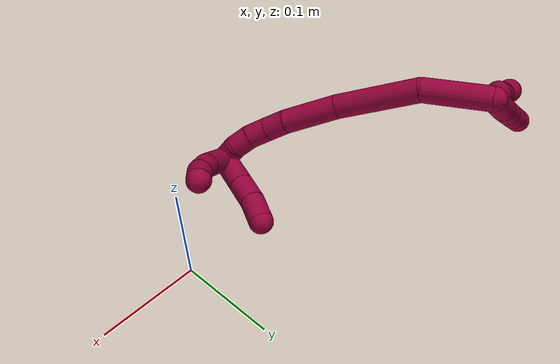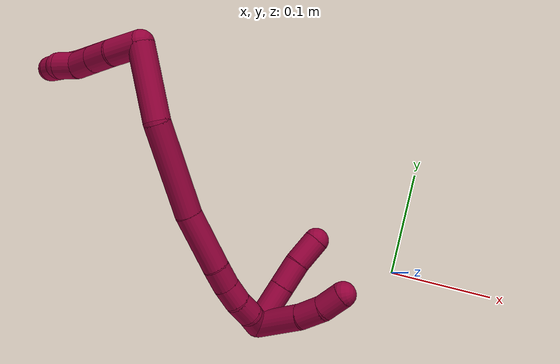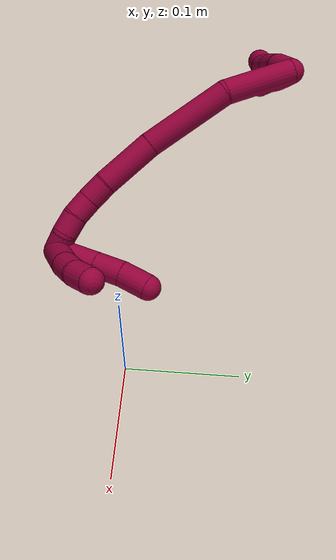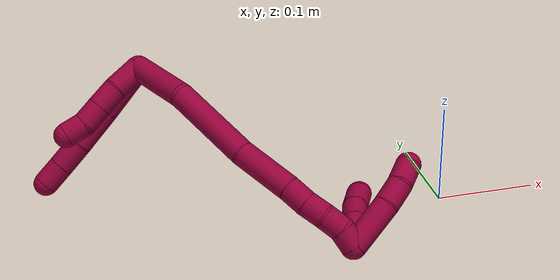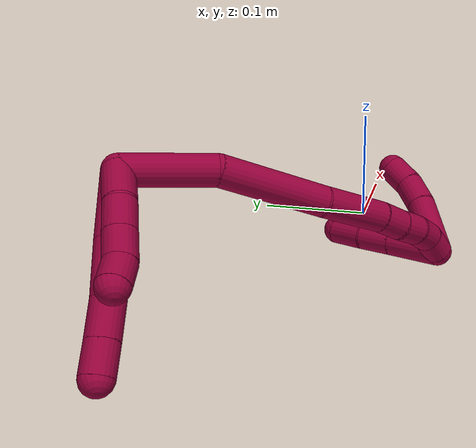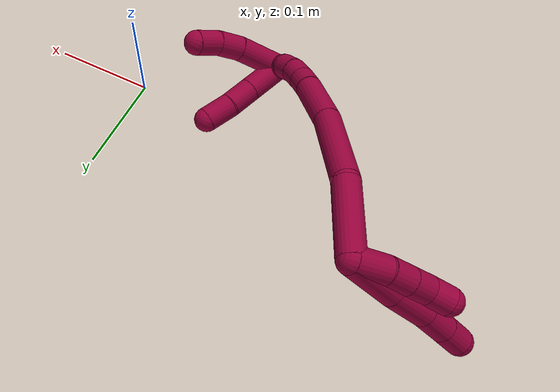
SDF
<sdf version="1.7">
 <world name="default">
  <model name="8">
   <static>0</static>
   <link name="8">
    <collision name="collision-cylinder-e_1_2_8">
     <pose>-0.009248 -9.6e-05 0.025584 0.003743 -0.346846 -0.000656</pose>
     <geometry><cylinder><radius>0.0125</radius><length>0.054408</length></cylinder></geometry>
     <surface>
      <friction><ode><mu>1.16</mu><mu2>1.16</mu2><slip1>0</slip1><slip2>0</slip2></ode></friction>
      <contact><ode><kp>1e+06</kp><kd>1</kd><max_vel>0</max_vel><min_depth>0.001</min_depth></ode></contact>
     </surface>
    </collision>
    <visual name="visual-cylinder-e_1_2_8">
     <pose>-0.009248 -9.6e-05 0.025584 0.003743 -0.346846 -0.000656</pose>
     <geometry><cylinder><radius>0.0125</radius><length>0.054408</length></cylinder></geometry>
     <material><ambient>0.584314 0 0.227451 1</ambient></material>
    </visual>
    <collision name="collision-cylinder-e_2_8_9">
     <pose>-0.024423 -0.000315 0.071557 0.006048 -0.282921 -0.000861</pose>
     <geometry><cylinder><radius>0.0125</radius><length>0.042467</length></cylinder></geometry>
     <surface>
      <friction><ode><mu>1.16</mu><mu2>1.16</mu2><slip1>0</slip1><slip2>0</slip2></ode></friction>
      <contact><ode><kp>1e+06</kp><kd>1</kd><max_vel>0</max_vel><min_depth>0.001</min_depth></ode></contact>
     </surface>
    </collision>
    <visual name="visual-cylinder-e_2_8_9">
     <pose>-0.024423 -0.000315 0.071557 0.006048 -0.282921 -0.000861</pose>
     <geometry><cylinder><radius>0.0125</radius><length>0.042467</length></cylinder></geometry>
     <material><ambient>0.584314 0 0.227451 1</ambient></material>
    </visual>
    <collision name="collision-cylinder-e_3_9_10">
     <pose>-0.035276 0.000275 0.105436 -0.052851 -0.349638 0.009337</pose>
     <geometry><cylinder><radius>0.0125</radius><length>0.028759</length></cylinder></geometry>
     <surface>
      <friction><ode><mu>1.16</mu><mu2>1.16</mu2><slip1>0</slip1><slip2>0</slip2></ode></friction>
      <contact><ode><kp>1e+06</kp><kd>1</kd><max_vel>0</max_vel><min_depth>0.001</min_depth></ode></contact>
     </surface>
    </collision>
    <visual name="visual-cylinder-e_3_9_10">
     <pose>-0.035276 0.000275 0.105436 -0.052851 -0.349638 0.009337</pose>
     <geometry><cylinder><radius>0.0125</radius><length>0.028759</length></cylinder></geometry>
     <material><ambient>0.584314 0 0.227451 1</ambient></material>
    </visual>
    <collision name="collision-cylinder-e_4_10_6">
     <pose>-0.044409 0.00176 0.130334 -0.067439 -0.352587 0.012018</pose>
     <geometry><cylinder><radius>0.0125</radius><length>0.024366</length></cylinder></geometry>
     <surface>
      <friction><ode><mu>1.16</mu><mu2>1.16</mu2><slip1>0</slip1><slip2>0</slip2></ode></friction>
      <contact><ode><kp>1e+06</kp><kd>1</kd><max_vel>0</max_vel><min_depth>0.001</min_depth></ode></contact>
     </surface>
    </collision>
    <visual name="visual-cylinder-e_4_10_6">
     <pose>-0.044409 0.00176 0.130334 -0.067439 -0.352587 0.012018</pose>
     <geometry><cylinder><radius>0.0125</radius><length>0.024366</length></cylinder></geometry>
     <material><ambient>0.584314 0 0.227451 1</ambient></material>
    </visual>
    <collision name="collision-cylinder-e_1_2_11">
     <pose>0.000225 0.000539 0.016017 -0.033668 0.014026 -0.000236</pose>
     <geometry><cylinder><radius>0.0125</radius><length>0.032056</length></cylinder></geometry>
     <surface>
      <friction><ode><mu>1.16</mu><mu2>1.16</mu2><slip1>0</slip1><slip2>0</slip2></ode></friction>
      <contact><ode><kp>1e+06</kp><kd>1</kd><max_vel>0</max_vel><min_depth>0.001</min_depth></ode></contact>
     </surface>
    </collision>
    <visual name="visual-cylinder-e_1_2_11">
     <pose>0.000225 0.000539 0.016017 -0.033668 0.014026 -0.000236</pose>
     <geometry><cylinder><radius>0.0125</radius><length>0.032056</length></cylinder></geometry>
     <material><ambient>0.584314 0 0.227451 1</ambient></material>
    </visual>
    <collision name="collision-cylinder-e_2_11_12">
     <pose>-0.001485 0.000967 0.044029 0.009357 -0.159893 -0.00075</pose>
     <geometry><cylinder><radius>0.0125</radius><length>0.0243</length></cylinder></geometry>
     <surface>
      <friction><ode><mu>1.16</mu><mu2>1.16</mu2><slip1>0</slip1><slip2>0</slip2></ode></friction>
      <contact><ode><kp>1e+06</kp><kd>1</kd><max_vel>0</max_vel><min_depth>0.001</min_depth></ode></contact>
     </surface>
    </collision>
    <visual name="visual-cylinder-e_2_11_12">
     <pose>-0.001485 0.000967 0.044029 0.009357 -0.159893 -0.00075</pose>
     <geometry><cylinder><radius>0.0125</radius><length>0.0243</length></cylinder></geometry>
     <material><ambient>0.584314 0 0.227451 1</ambient></material>
    </visual>
    <collision name="collision-cylinder-e_3_12_13">
     <pose>-0.005288 0.000657 0.067232 0.017597 -0.165155 -0.001456</pose>
     <geometry><cylinder><radius>0.0125</radius><length>0.022728</length></cylinder></geometry>
     <surface>
      <friction><ode><mu>1.16</mu><mu2>1.16</mu2><slip1>0</slip1><slip2>0</slip2></ode></friction>
      <contact><ode><kp>1e+06</kp><kd>1</kd><max_vel>0</max_vel><min_depth>0.001</min_depth></ode></contact>
     </surface>
    </collision>
    <visual name="visual-cylinder-e_3_12_13">
     <pose>-0.005288 0.000657 0.067232 0.017597 -0.165155 -0.001456</pose>
     <geometry><cylinder><radius>0.0125</radius><length>0.022728</length></cylinder></geometry>
     <material><ambient>0.584314 0 0.227451 1</ambient></material>
    </visual>
    <collision name="collision-cylinder-e_4_13_5">
     <pose>-0.007665 0.003316 0.088487 -0.276979 -0.048731 0.006794</pose>
     <geometry><cylinder><radius>0.0125</radius><length>0.020916</length></cylinder></geometry>
     <surface>
      <friction><ode><mu>1.16</mu><mu2>1.16</mu2><slip1>0</slip1><slip2>0</slip2></ode></friction>
      <contact><ode><kp>1e+06</kp><kd>1</kd><max_vel>0</max_vel><min_depth>0.001</min_depth></ode></contact>
     </surface>
    </collision>
    <visual name="visual-cylinder-e_4_13_5">
     <pose>-0.007665 0.003316 0.088487 -0.276979 -0.048731 0.006794</pose>
     <geometry><cylinder><radius>0.0125</radius><length>0.020916</length></cylinder></geometry>
     <material><ambient>0.584314 0 0.227451 1</ambient></material>
    </visual>
    <collision name="collision-cylinder-e_1_2_14">
     <pose>0.013328 -0.032901 0.000687 1.54992 0.384802 0.377039</pose>
     <geometry><cylinder><radius>0.0125</radius><length>0.07101</length></cylinder></geometry>
     <surface>
      <friction><ode><mu>1.16</mu><mu2>1.16</mu2><slip1>0</slip1><slip2>0</slip2></ode></friction>
      <contact><ode><kp>1e+06</kp><kd>1</kd><max_vel>0</max_vel><min_depth>0.001</min_depth></ode></contact>
     </surface>
    </collision>
    <visual name="visual-cylinder-e_1_2_14">
     <pose>0.013328 -0.032901 0.000687 1.54992 0.384802 0.377039</pose>
     <geometry><cylinder><radius>0.0125</radius><length>0.07101</length></cylinder></geometry>
     <material><ambient>0.584314 0 0.227451 1</ambient></material>
    </visual>
    <collision name="collision-cylinder-e_2_14_15">
     <pose>0.029294 -0.109985 0.005122 1.48618 0.059446 0.05462</pose>
     <geometry><cylinder><radius>0.0125</radius><length>0.088838</length></cylinder></geometry>
     <surface>
      <friction><ode><mu>1.16</mu><mu2>1.16</mu2><slip1>0</slip1><slip2>0</slip2></ode></friction>
      <contact><ode><kp>1e+06</kp><kd>1</kd><max_vel>0</max_vel><min_depth>0.001</min_depth></ode></contact>
     </surface>
    </collision>
    <visual name="visual-cylinder-e_2_14_15">
     <pose>0.029294 -0.109985 0.005122 1.48618 0.059446 0.05462</pose>
     <geometry><cylinder><radius>0.0125</radius><length>0.088838</length></cylinder></geometry>
     <material><ambient>0.584314 0 0.227451 1</ambient></material>
    </visual>
    <collision name="collision-cylinder-e_3_15_16">
     <pose>0.031612 -0.18268 0.007782 1.60889 -0.011241 -0.011677</pose>
     <geometry><cylinder><radius>0.0125</radius><length>0.057073</length></cylinder></geometry>
     <surface>
      <friction><ode><mu>1.16</mu><mu2>1.16</mu2><slip1>0</slip1><slip2>0</slip2></ode></friction>
      <contact><ode><kp>1e+06</kp><kd>1</kd><max_vel>0</max_vel><min_depth>0.001</min_depth></ode></contact>
     </surface>
    </collision>
    <visual name="visual-cylinder-e_3_15_16">
     <pose>0.031612 -0.18268 0.007782 1.60889 -0.011241 -0.011677</pose>
     <geometry><cylinder><radius>0.0125</radius><length>0.057073</length></cylinder></geometry>
     <material><ambient>0.584314 0 0.227451 1</ambient></material>
    </visual>
    <collision name="collision-cylinder-e_4_16_17">
     <pose>0.030024 -0.222202 0.006756 1.56525 -0.114694 -0.114061</pose>
     <geometry><cylinder><radius>0.0125</radius><length>0.022161</length></cylinder></geometry>
     <surface>
      <friction><ode><mu>1.16</mu><mu2>1.16</mu2><slip1>0</slip1><slip2>0</slip2></ode></friction>
      <contact><ode><kp>1e+06</kp><kd>1</kd><max_vel>0</max_vel><min_depth>0.001</min_depth></ode></contact>
     </surface>
    </collision>
    <visual name="visual-cylinder-e_4_16_17">
     <pose>0.030024 -0.222202 0.006756 1.56525 -0.114694 -0.114061</pose>
     <geometry><cylinder><radius>0.0125</radius><length>0.022161</length></cylinder></geometry>
     <material><ambient>0.584314 0 0.227451 1</ambient></material>
    </visual>
    <collision name="collision-cylinder-e_5_17_18">
     <pose>0.027491 -0.24337 0.005644 1.6858 -0.123037 -0.138023</pose>
     <geometry><cylinder><radius>0.0125</radius><length>0.020612</length></cylinder></geometry>
     <surface>
      <friction><ode><mu>1.16</mu><mu2>1.16</mu2><slip1>0</slip1><slip2>0</slip2></ode></friction>
      <contact><ode><kp>1e+06</kp><kd>1</kd><max_vel>0</max_vel><min_depth>0.001</min_depth></ode></contact>
     </surface>
    </collision>
    <visual name="visual-cylinder-e_5_17_18">
     <pose>0.027491 -0.24337 0.005644 1.6858 -0.123037 -0.138023</pose>
     <geometry><cylinder><radius>0.0125</radius><length>0.020612</length></cylinder></geometry>
     <material><ambient>0.584314 0 0.227451 1</ambient></material>
    </visual>
    <collision name="collision-cylinder-e_6_18_19">
     <pose>0.023094 -0.26308 0.003211 1.70183 -0.314418 -0.357694</pose>
     <geometry><cylinder><radius>0.0125</radius><length>0.020256</length></cylinder></geometry>
     <surface>
      <friction><ode><mu>1.16</mu><mu2>1.16</mu2><slip1>0</slip1><slip2>0</slip2></ode></friction>
      <contact><ode><kp>1e+06</kp><kd>1</kd><max_vel>0</max_vel><min_depth>0.001</min_depth></ode></contact>
     </surface>
    </collision>
    <visual name="visual-cylinder-e_6_18_19">
     <pose>0.023094 -0.26308 0.003211 1.70183 -0.314418 -0.357694</pose>
     <geometry><cylinder><radius>0.0125</radius><length>0.020256</length></cylinder></geometry>
     <material><ambient>0.584314 0 0.227451 1</ambient></material>
    </visual>
    <collision name="collision-cylinder-e_7_19_1">
     <pose>0.015157 -0.281284 0.003537 1.38971 -0.499832 -0.419271</pose>
     <geometry><cylinder><radius>0.0125</radius><length>0.02005</length></cylinder></geometry>
     <surface>
      <friction><ode><mu>1.16</mu><mu2>1.16</mu2><slip1>0</slip1><slip2>0</slip2></ode></friction>
      <contact><ode><kp>1e+06</kp><kd>1</kd><max_vel>0</max_vel><min_depth>0.001</min_depth></ode></contact>
     </surface>
    </collision>
    <visual name="visual-cylinder-e_7_19_1">
     <pose>0.015157 -0.281284 0.003537 1.38971 -0.499832 -0.419271</pose>
     <geometry><cylinder><radius>0.0125</radius><length>0.02005</length></cylinder></geometry>
     <material><ambient>0.584314 0 0.227451 1</ambient></material>
    </visual>
    <collision name="collision-cylinder-e_1_1_20">
     <pose>0.012408 -0.288474 -0.02004 -3.08347 0.081382 -1.90151</pose>
     <geometry><cylinder><radius>0.0125</radius><length>0.050577</length></cylinder></geometry>
     <surface>
      <friction><ode><mu>1.16</mu><mu2>1.16</mu2><slip1>0</slip1><slip2>0</slip2></ode></friction>
      <contact><ode><kp>1e+06</kp><kd>1</kd><max_vel>0</max_vel><min_depth>0.001</min_depth></ode></contact>
     </surface>
    </collision>
    <visual name="visual-cylinder-e_1_1_20">
     <pose>0.012408 -0.288474 -0.02004 -3.08347 0.081382 -1.90151</pose>
     <geometry><cylinder><radius>0.0125</radius><length>0.050577</length></cylinder></geometry>
     <material><ambient>0.584314 0 0.227451 1</ambient></material>
    </visual>
    <collision name="collision-cylinder-e_2_20_21">
     <pose>0.013823 -0.284893 -0.057671 -2.97342 -0.050593 0.58327</pose>
     <geometry><cylinder><radius>0.0125</radius><length>0.025327</length></cylinder></geometry>
     <surface>
      <friction><ode><mu>1.16</mu><mu2>1.16</mu2><slip1>0</slip1><slip2>0</slip2></ode></friction>
      <contact><ode><kp>1e+06</kp><kd>1</kd><max_vel>0</max_vel><min_depth>0.001</min_depth></ode></contact>
     </surface>
    </collision>
    <visual name="visual-cylinder-e_2_20_21">
     <pose>0.013823 -0.284893 -0.057671 -2.97342 -0.050593 0.58327</pose>
     <geometry><cylinder><radius>0.0125</radius><length>0.025327</length></cylinder></geometry>
     <material><ambient>0.584314 0 0.227451 1</ambient></material>
    </visual>
    <collision name="collision-cylinder-e_3_21_4">
     <pose>0.01071 -0.278856 -0.081261 -2.80267 -0.206691 1.08988</pose>
     <geometry><cylinder><radius>0.0125</radius><length>0.024096</length></cylinder></geometry>
     <surface>
      <friction><ode><mu>1.16</mu><mu2>1.16</mu2><slip1>0</slip1><slip2>0</slip2></ode></friction>
      <contact><ode><kp>1e+06</kp><kd>1</kd><max_vel>0</max_vel><min_depth>0.001</min_depth></ode></contact>
     </surface>
    </collision>
    <visual name="visual-cylinder-e_3_21_4">
     <pose>0.01071 -0.278856 -0.081261 -2.80267 -0.206691 1.08988</pose>
     <geometry><cylinder><radius>0.0125</radius><length>0.024096</length></cylinder></geometry>
     <material><ambient>0.584314 0 0.227451 1</ambient></material>
    </visual>
    <collision name="collision-cylinder-e_1_1_22">
     <pose>-0.002923 -0.278955 -0.008102 -2.4485 -0.657574 1.51401</pose>
     <geometry><cylinder><radius>0.0125</radius><length>0.043438</length></cylinder></geometry>
     <surface>
      <friction><ode><mu>1.16</mu><mu2>1.16</mu2><slip1>0</slip1><slip2>0</slip2></ode></friction>
      <contact><ode><kp>1e+06</kp><kd>1</kd><max_vel>0</max_vel><min_depth>0.001</min_depth></ode></contact>
     </surface>
    </collision>
    <visual name="visual-cylinder-e_1_1_22">
     <pose>-0.002923 -0.278955 -0.008102 -2.4485 -0.657574 1.51401</pose>
     <geometry><cylinder><radius>0.0125</radius><length>0.043438</length></cylinder></geometry>
     <material><ambient>0.584314 0 0.227451 1</ambient></material>
    </visual>
    <collision name="collision-cylinder-e_2_22_23">
     <pose>-0.024753 -0.261045 -0.029701 -2.45056 -0.666885 1.53235</pose>
     <geometry><cylinder><radius>0.0125</radius><length>0.027664</length></cylinder></geometry>
     <surface>
      <friction><ode><mu>1.16</mu><mu2>1.16</mu2><slip1>0</slip1><slip2>0</slip2></ode></friction>
      <contact><ode><kp>1e+06</kp><kd>1</kd><max_vel>0</max_vel><min_depth>0.001</min_depth></ode></contact>
     </surface>
    </collision>
    <visual name="visual-cylinder-e_2_22_23">
     <pose>-0.024753 -0.261045 -0.029701 -2.45056 -0.666885 1.53235</pose>
     <geometry><cylinder><radius>0.0125</radius><length>0.027664</length></cylinder></geometry>
     <material><ambient>0.584314 0 0.227451 1</ambient></material>
    </visual>
    <collision name="collision-cylinder-e_3_23_3">
     <pose>-0.042598 -0.248611 -0.047676 -2.62078 -0.698238 1.87788</pose>
     <geometry><cylinder><radius>0.0125</radius><length>0.028898</length></cylinder></geometry>
     <surface>
      <friction><ode><mu>1.16</mu><mu2>1.16</mu2><slip1>0</slip1><slip2>0</slip2></ode></friction>
      <contact><ode><kp>1e+06</kp><kd>1</kd><max_vel>0</max_vel><min_depth>0.001</min_depth></ode></contact>
     </surface>
    </collision>
    <visual name="visual-cylinder-e_3_23_3">
     <pose>-0.042598 -0.248611 -0.047676 -2.62078 -0.698238 1.87788</pose>
     <geometry><cylinder><radius>0.0125</radius><length>0.028898</length></cylinder></geometry>
     <material><ambient>0.584314 0 0.227451 1</ambient></material>
    </visual>
    <collision name="collision-sphere-3">
     <pose>-0.051886 -0.243104 -0.057277 0 -0 0</pose>
     <geometry><sphere><radius>0.0125</radius></sphere></geometry>
     <surface>
      <friction><ode><mu>1.16</mu><mu2>1.16</mu2><slip1>0</slip1><slip2>0</slip2></ode></friction>
      <contact><ode><kp>1e+06</kp><kd>1</kd><max_vel>0</max_vel><min_depth>0.001</min_depth></ode></contact>
     </surface>
    </collision>
    <visual name="visual-sphere-3">
     <pose>-0.051886 -0.243104 -0.057277 0 -0 0</pose>
     <geometry><sphere><radius>0.0125</radius></sphere></geometry>
     <material><ambient>0.584314 0 0.227451 1</ambient></material>
    </visual>
    <collision name="collision-sphere-23">
     <pose>-0.033309 -0.254118 -0.038076 0 -0 0</pose>
     <geometry><sphere><radius>0.0125</radius></sphere></geometry>
     <surface>
      <friction><ode><mu>1.16</mu><mu2>1.16</mu2><slip1>0</slip1><slip2>0</slip2></ode></friction>
      <contact><ode><kp>1e+06</kp><kd>1</kd><max_vel>0</max_vel><min_depth>0.001</min_depth></ode></contact>
     </surface>
    </collision>
    <visual name="visual-sphere-23">
     <pose>-0.033309 -0.254118 -0.038076 0 -0 0</pose>
     <geometry><sphere><radius>0.0125</radius></sphere></geometry>
     <material><ambient>0.584314 0 0.227451 1</ambient></material>
    </visual>
    <collision name="collision-sphere-22">
     <pose>-0.016198 -0.267972 -0.021326 0 -0 0</pose>
     <geometry><sphere><radius>0.0125</radius></sphere></geometry>
     <surface>
      <friction><ode><mu>1.16</mu><mu2>1.16</mu2><slip1>0</slip1><slip2>0</slip2></ode></friction>
      <contact><ode><kp>1e+06</kp><kd>1</kd><max_vel>0</max_vel><min_depth>0.001</min_depth></ode></contact>
     </surface>
    </collision>
    <visual name="visual-sphere-22">
     <pose>-0.016198 -0.267972 -0.021326 0 -0 0</pose>
     <geometry><sphere><radius>0.0125</radius></sphere></geometry>
     <material><ambient>0.584314 0 0.227451 1</ambient></material>
    </visual>
    <collision name="collision-sphere-4">
     <pose>0.008238 -0.274935 -0.092382 0 -0 0</pose>
     <geometry><sphere><radius>0.0125</radius></sphere></geometry>
     <surface>
      <friction><ode><mu>1.16</mu><mu2>1.16</mu2><slip1>0</slip1><slip2>0</slip2></ode></friction>
      <contact><ode><kp>1e+06</kp><kd>1</kd><max_vel>0</max_vel><min_depth>0.001</min_depth></ode></contact>
     </surface>
    </collision>
    <visual name="visual-sphere-4">
     <pose>0.008238 -0.274935 -0.092382 0 -0 0</pose>
     <geometry><sphere><radius>0.0125</radius></sphere></geometry>
     <material><ambient>0.584314 0 0.227451 1</ambient></material>
    </visual>
    <collision name="collision-sphere-21">
     <pose>0.013183 -0.282776 -0.07014 0 -0 0</pose>
     <geometry><sphere><radius>0.0125</radius></sphere></geometry>
     <surface>
      <friction><ode><mu>1.16</mu><mu2>1.16</mu2><slip1>0</slip1><slip2>0</slip2></ode></friction>
      <contact><ode><kp>1e+06</kp><kd>1</kd><max_vel>0</max_vel><min_depth>0.001</min_depth></ode></contact>
     </surface>
    </collision>
    <visual name="visual-sphere-21">
     <pose>0.013183 -0.282776 -0.07014 0 -0 0</pose>
     <geometry><sphere><radius>0.0125</radius></sphere></geometry>
     <material><ambient>0.584314 0 0.227451 1</ambient></material>
    </visual>
    <collision name="collision-sphere-20">
     <pose>0.014463 -0.28701 -0.045202 0 -0 0</pose>
     <geometry><sphere><radius>0.0125</radius></sphere></geometry>
     <surface>
      <friction><ode><mu>1.16</mu><mu2>1.16</mu2><slip1>0</slip1><slip2>0</slip2></ode></friction>
      <contact><ode><kp>1e+06</kp><kd>1</kd><max_vel>0</max_vel><min_depth>0.001</min_depth></ode></contact>
     </surface>
    </collision>
    <visual name="visual-sphere-20">
     <pose>0.014463 -0.28701 -0.045202 0 -0 0</pose>
     <geometry><sphere><radius>0.0125</radius></sphere></geometry>
     <material><ambient>0.584314 0 0.227451 1</ambient></material>
    </visual>
    <collision name="collision-sphere-11">
     <pose>0.00045 0.001079 0.032035 0 -0 0</pose>
     <geometry><sphere><radius>0.0125</radius></sphere></geometry>
     <surface>
      <friction><ode><mu>1.16</mu><mu2>1.16</mu2><slip1>0</slip1><slip2>0</slip2></ode></friction>
      <contact><ode><kp>1e+06</kp><kd>1</kd><max_vel>0</max_vel><min_depth>0.001</min_depth></ode></contact>
     </surface>
    </collision>
    <visual name="visual-sphere-11">
     <pose>0.00045 0.001079 0.032035 0 -0 0</pose>
     <geometry><sphere><radius>0.0125</radius></sphere></geometry>
     <material><ambient>0.584314 0 0.227451 1</ambient></material>
    </visual>
    <collision name="collision-sphere-6">
     <pose>-0.048616 0.00253 0.141742 0 -0 0</pose>
     <geometry><sphere><radius>0.0125</radius></sphere></geometry>
     <surface>
      <friction><ode><mu>1.16</mu><mu2>1.16</mu2><slip1>0</slip1><slip2>0</slip2></ode></friction>
      <contact><ode><kp>1e+06</kp><kd>1</kd><max_vel>0</max_vel><min_depth>0.001</min_depth></ode></contact>
     </surface>
    </collision>
    <visual name="visual-sphere-6">
     <pose>-0.048616 0.00253 0.141742 0 -0 0</pose>
     <geometry><sphere><radius>0.0125</radius></sphere></geometry>
     <material><ambient>0.584314 0 0.227451 1</ambient></material>
    </visual>
    <collision name="collision-sphere-10">
     <pose>-0.040202 0.000989 0.118927 0 -0 0</pose>
     <geometry><sphere><radius>0.0125</radius></sphere></geometry>
     <surface>
      <friction><ode><mu>1.16</mu><mu2>1.16</mu2><slip1>0</slip1><slip2>0</slip2></ode></friction>
      <contact><ode><kp>1e+06</kp><kd>1</kd><max_vel>0</max_vel><min_depth>0.001</min_depth></ode></contact>
     </surface>
    </collision>
    <visual name="visual-sphere-10">
     <pose>-0.040202 0.000989 0.118927 0 -0 0</pose>
     <geometry><sphere><radius>0.0125</radius></sphere></geometry>
     <material><ambient>0.584314 0 0.227451 1</ambient></material>
    </visual>
    <collision name="collision-sphere-9">
     <pose>-0.03035 -0.000438 0.091946 0 -0 0</pose>
     <geometry><sphere><radius>0.0125</radius></sphere></geometry>
     <surface>
      <friction><ode><mu>1.16</mu><mu2>1.16</mu2><slip1>0</slip1><slip2>0</slip2></ode></friction>
      <contact><ode><kp>1e+06</kp><kd>1</kd><max_vel>0</max_vel><min_depth>0.001</min_depth></ode></contact>
     </surface>
    </collision>
    <visual name="visual-sphere-9">
     <pose>-0.03035 -0.000438 0.091946 0 -0 0</pose>
     <geometry><sphere><radius>0.0125</radius></sphere></geometry>
     <material><ambient>0.584314 0 0.227451 1</ambient></material>
    </visual>
    <collision name="collision-sphere-2">
     <geometry><sphere><radius>0.0125</radius></sphere></geometry>
     <surface>
      <friction><ode><mu>1.16</mu><mu2>1.16</mu2><slip1>0</slip1><slip2>0</slip2></ode></friction>
      <contact><ode><kp>1e+06</kp><kd>1</kd><max_vel>0</max_vel><min_depth>0.001</min_depth></ode></contact>
     </surface>
    </collision>
    <visual name="visual-sphere-2">
     <geometry><sphere><radius>0.0125</radius></sphere></geometry>
     <material><ambient>0.584314 0 0.227451 1</ambient></material>
    </visual>
    <collision name="collision-sphere-19">
     <pose>0.019961 -0.272629 0.001953 0 -0 0</pose>
     <geometry><sphere><radius>0.0125</radius></sphere></geometry>
     <surface>
      <friction><ode><mu>1.16</mu><mu2>1.16</mu2><slip1>0</slip1><slip2>0</slip2></ode></friction>
      <contact><ode><kp>1e+06</kp><kd>1</kd><max_vel>0</max_vel><min_depth>0.001</min_depth></ode></contact>
     </surface>
    </collision>
    <visual name="visual-sphere-19">
     <pose>0.019961 -0.272629 0.001953 0 -0 0</pose>
     <geometry><sphere><radius>0.0125</radius></sphere></geometry>
     <material><ambient>0.584314 0 0.227451 1</ambient></material>
    </visual>
    <collision name="collision-sphere-8">
     <pose>-0.018495 -0.000192 0.051168 0 -0 0</pose>
     <geometry><sphere><radius>0.0125</radius></sphere></geometry>
     <surface>
      <friction><ode><mu>1.16</mu><mu2>1.16</mu2><slip1>0</slip1><slip2>0</slip2></ode></friction>
      <contact><ode><kp>1e+06</kp><kd>1</kd><max_vel>0</max_vel><min_depth>0.001</min_depth></ode></contact>
     </surface>
    </collision>
    <visual name="visual-sphere-8">
     <pose>-0.018495 -0.000192 0.051168 0 -0 0</pose>
     <geometry><sphere><radius>0.0125</radius></sphere></geometry>
     <material><ambient>0.584314 0 0.227451 1</ambient></material>
    </visual>
    <collision name="collision-sphere-12">
     <pose>-0.003419 0.000854 0.056024 0 -0 0</pose>
     <geometry><sphere><radius>0.0125</radius></sphere></geometry>
     <surface>
      <friction><ode><mu>1.16</mu><mu2>1.16</mu2><slip1>0</slip1><slip2>0</slip2></ode></friction>
      <contact><ode><kp>1e+06</kp><kd>1</kd><max_vel>0</max_vel><min_depth>0.001</min_depth></ode></contact>
     </surface>
    </collision>
    <visual name="visual-sphere-12">
     <pose>-0.003419 0.000854 0.056024 0 -0 0</pose>
     <geometry><sphere><radius>0.0125</radius></sphere></geometry>
     <material><ambient>0.584314 0 0.227451 1</ambient></material>
    </visual>
    <collision name="collision-sphere-13">
     <pose>-0.007156 0.00046 0.078439 0 -0 0</pose>
     <geometry><sphere><radius>0.0125</radius></sphere></geometry>
     <surface>
      <friction><ode><mu>1.16</mu><mu2>1.16</mu2><slip1>0</slip1><slip2>0</slip2></ode></friction>
      <contact><ode><kp>1e+06</kp><kd>1</kd><max_vel>0</max_vel><min_depth>0.001</min_depth></ode></contact>
     </surface>
    </collision>
    <visual name="visual-sphere-13">
     <pose>-0.007156 0.00046 0.078439 0 -0 0</pose>
     <geometry><sphere><radius>0.0125</radius></sphere></geometry>
     <material><ambient>0.584314 0 0.227451 1</ambient></material>
    </visual>
    <collision name="collision-sphere-5">
     <pose>-0.008175 0.006173 0.098534 0 -0 0</pose>
     <geometry><sphere><radius>0.0125</radius></sphere></geometry>
     <surface>
      <friction><ode><mu>1.16</mu><mu2>1.16</mu2><slip1>0</slip1><slip2>0</slip2></ode></friction>
      <contact><ode><kp>1e+06</kp><kd>1</kd><max_vel>0</max_vel><min_depth>0.001</min_depth></ode></contact>
     </surface>
    </collision>
    <visual name="visual-sphere-5">
     <pose>-0.008175 0.006173 0.098534 0 -0 0</pose>
     <geometry><sphere><radius>0.0125</radius></sphere></geometry>
     <material><ambient>0.584314 0 0.227451 1</ambient></material>
    </visual>
    <collision name="collision-sphere-14">
     <pose>0.026655 -0.065802 0.001374 0 -0 0</pose>
     <geometry><sphere><radius>0.0125</radius></sphere></geometry>
     <surface>
      <friction><ode><mu>1.16</mu><mu2>1.16</mu2><slip1>0</slip1><slip2>0</slip2></ode></friction>
      <contact><ode><kp>1e+06</kp><kd>1</kd><max_vel>0</max_vel><min_depth>0.001</min_depth></ode></contact>
     </surface>
    </collision>
    <visual name="visual-sphere-14">
     <pose>0.026655 -0.065802 0.001374 0 -0 0</pose>
     <geometry><sphere><radius>0.0125</radius></sphere></geometry>
     <material><ambient>0.584314 0 0.227451 1</ambient></material>
    </visual>
    <collision name="collision-sphere-15">
     <pose>0.031933 -0.154167 0.008869 0 -0 0</pose>
     <geometry><sphere><radius>0.0125</radius></sphere></geometry>
     <surface>
      <friction><ode><mu>1.16</mu><mu2>1.16</mu2><slip1>0</slip1><slip2>0</slip2></ode></friction>
      <contact><ode><kp>1e+06</kp><kd>1</kd><max_vel>0</max_vel><min_depth>0.001</min_depth></ode></contact>
     </surface>
    </collision>
    <visual name="visual-sphere-15">
     <pose>0.031933 -0.154167 0.008869 0 -0 0</pose>
     <geometry><sphere><radius>0.0125</radius></sphere></geometry>
     <material><ambient>0.584314 0 0.227451 1</ambient></material>
    </visual>
    <collision name="collision-sphere-16">
     <pose>0.031292 -0.211194 0.006695 0 -0 0</pose>
     <geometry><sphere><radius>0.0125</radius></sphere></geometry>
     <surface>
      <friction><ode><mu>1.16</mu><mu2>1.16</mu2><slip1>0</slip1><slip2>0</slip2></ode></friction>
      <contact><ode><kp>1e+06</kp><kd>1</kd><max_vel>0</max_vel><min_depth>0.001</min_depth></ode></contact>
     </surface>
    </collision>
    <visual name="visual-sphere-16">
     <pose>0.031292 -0.211194 0.006695 0 -0 0</pose>
     <geometry><sphere><radius>0.0125</radius></sphere></geometry>
     <material><ambient>0.584314 0 0.227451 1</ambient></material>
    </visual>
    <collision name="collision-sphere-17">
     <pose>0.028755 -0.23321 0.006817 0 -0 0</pose>
     <geometry><sphere><radius>0.0125</radius></sphere></geometry>
     <surface>
      <friction><ode><mu>1.16</mu><mu2>1.16</mu2><slip1>0</slip1><slip2>0</slip2></ode></friction>
      <contact><ode><kp>1e+06</kp><kd>1</kd><max_vel>0</max_vel><min_depth>0.001</min_depth></ode></contact>
     </surface>
    </collision>
    <visual name="visual-sphere-17">
     <pose>0.028755 -0.23321 0.006817 0 -0 0</pose>
     <geometry><sphere><radius>0.0125</radius></sphere></geometry>
     <material><ambient>0.584314 0 0.227451 1</ambient></material>
    </visual>
    <collision name="collision-sphere-18">
     <pose>0.026226 -0.253531 0.00447 0 -0 0</pose>
     <geometry><sphere><radius>0.0125</radius></sphere></geometry>
     <surface>
      <friction><ode><mu>1.16</mu><mu2>1.16</mu2><slip1>0</slip1><slip2>0</slip2></ode></friction>
      <contact><ode><kp>1e+06</kp><kd>1</kd><max_vel>0</max_vel><min_depth>0.001</min_depth></ode></contact>
     </surface>
    </collision>
    <visual name="visual-sphere-18">
     <pose>0.026226 -0.253531 0.00447 0 -0 0</pose>
     <geometry><sphere><radius>0.0125</radius></sphere></geometry>
     <material><ambient>0.584314 0 0.227451 1</ambient></material>
    </visual>
    <collision name="collision-sphere-1">
     <pose>0.010352 -0.289938 0.005122 0 -0 0</pose>
     <geometry><sphere><radius>0.0125</radius></sphere></geometry>
     <surface>
      <friction><ode><mu>1.16</mu><mu2>1.16</mu2><slip1>0</slip1><slip2>0</slip2></ode></friction>
      <contact><ode><kp>1e+06</kp><kd>1</kd><max_vel>0</max_vel><min_depth>0.001</min_depth></ode></contact>
     </surface>
    </collision>
    <visual name="visual-sphere-1">
     <pose>0.010352 -0.289938 0.005122 0 -0 0</pose>
     <geometry><sphere><radius>0.0125</radius></sphere></geometry>
     <material><ambient>0.584314 0 0.227451 1</ambient></material>
    </visual>
    <inertial>
     <pose>0.003471 -0.131111 0.01329 0 -0 0</pose>
     <mass>0.75</mass>
     <inertia>
      <ixx>0.000155</ixx>
      <ixy>0</ixy>
      <ixz>0</ixz>
      <iyy>5.4e-05</iyy>
      <iyz>0</iyz>
      <izz>0.000117</izz>
     </inertia>
    </inertial>
   </link>
   <pose>-0.276339 0.137292 0.118067 2.46868 -0.907624 -1.91417</pose>
  </model>
 </world>
</sdf>
